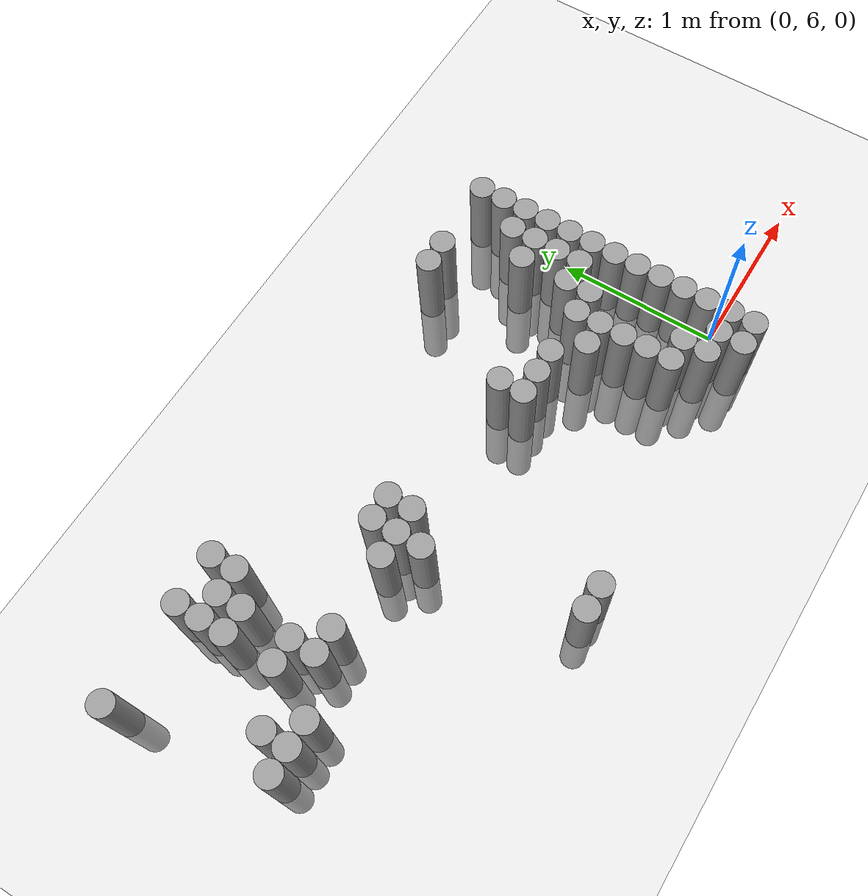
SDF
<sdf version="1.6">
 <world name="default">
  <model name="ground_plane">
   <static>1</static>
   <static>1</static>
   <link name="link">
    <collision name="collision">
     <geometry><plane><normal>0 0 1</normal><size>100 100</size></plane></geometry>
     <surface><friction><ode><mu>100000</mu><mu2>50000</mu2></ode></friction></surface>
    </collision>
    <visual name="visual">
     <cast_shadows>0</cast_shadows>
     <geometry><plane><normal>0 0 1</normal><size>100 100</size></plane></geometry>
     <material>
      <script><uri>file://media/materials/scripts/gazebo.material</uri><name>Gazebo/Grey</name></script>
     </material>
    </visual>
   </link>
  </model>
  <model name="unit_cylinder_164">
   <static>1</static>
   <pose>-3.675000 7.575000 0.000000 0.000000 0.000000 0.000000</pose>
   <link name="link">
    <inertial>
     <mass>1</mass>
     <inertia><ixx>0.145833</ixx><ixy>0</ixy><ixz>0</ixz><iyy>0.145833</iyy><iyz>0</iyz><izz>0.125</izz></inertia>
    </inertial>
    <collision name="collision">
     <geometry><cylinder><radius>0.075000</radius><length>1</length></cylinder></geometry>
    </collision>
    <visual name="visual">
     <geometry><cylinder><radius>0.075000</radius><length>1</length></cylinder></geometry>
     <material>
      <script><name>Gazebo/Grey</name><uri>file://media/materials/scripts/gazebo.material</uri></script>
     </material>
    </visual>
   </link>
  </model>
  <model name="unit_cylinder_167">
   <static>1</static>
   <pose>-3.525000 6.675000 0.000000 0.000000 0.000000 0.000000</pose>
   <link name="link">
    <inertial>
     <mass>1</mass>
     <inertia><ixx>0.145833</ixx><ixy>0</ixy><ixz>0</ixz><iyy>0.145833</iyy><iyz>0</iyz><izz>0.125</izz></inertia>
    </inertial>
    <collision name="collision">
     <geometry><cylinder><radius>0.075000</radius><length>1</length></cylinder></geometry>
    </collision>
    <visual name="visual">
     <geometry><cylinder><radius>0.075000</radius><length>1</length></cylinder></geometry>
     <material>
      <script><name>Gazebo/Grey</name><uri>file://media/materials/scripts/gazebo.material</uri></script>
     </material>
    </visual>
   </link>
  </model>
  <model name="unit_cylinder_169">
   <static>1</static>
   <pose>-3.375000 6.675000 0.000000 0.000000 0.000000 0.000000</pose>
   <link name="link">
    <inertial>
     <mass>1</mass>
     <inertia><ixx>0.145833</ixx><ixy>0</ixy><ixz>0</ixz><iyy>0.145833</iyy><iyz>0</iyz><izz>0.125</izz></inertia>
    </inertial>
    <collision name="collision">
     <geometry><cylinder><radius>0.075000</radius><length>1</length></cylinder></geometry>
    </collision>
    <visual name="visual">
     <geometry><cylinder><radius>0.075000</radius><length>1</length></cylinder></geometry>
     <material>
      <script><name>Gazebo/Grey</name><uri>file://media/materials/scripts/gazebo.material</uri></script>
     </material>
    </visual>
   </link>
  </model>
  <model name="unit_cylinder_170">
   <static>1</static>
   <pose>-3.375000 6.825000 0.000000 0.000000 0.000000 0.000000</pose>
   <link name="link">
    <inertial>
     <mass>1</mass>
     <inertia><ixx>0.145833</ixx><ixy>0</ixy><ixz>0</ixz><iyy>0.145833</iyy><iyz>0</iyz><izz>0.125</izz></inertia>
    </inertial>
    <collision name="collision">
     <geometry><cylinder><radius>0.075000</radius><length>1</length></cylinder></geometry>
    </collision>
    <visual name="visual">
     <geometry><cylinder><radius>0.075000</radius><length>1</length></cylinder></geometry>
     <material>
      <script><name>Gazebo/Grey</name><uri>file://media/materials/scripts/gazebo.material</uri></script>
     </material>
    </visual>
   </link>
  </model>
  <model name="unit_cylinder_171">
   <static>1</static>
   <pose>-3.225000 6.675000 0.000000 0.000000 0.000000 0.000000</pose>
   <link name="link">
    <inertial>
     <mass>1</mass>
     <inertia><ixx>0.145833</ixx><ixy>0</ixy><ixz>0</ixz><iyy>0.145833</iyy><iyz>0</iyz><izz>0.125</izz></inertia>
    </inertial>
    <collision name="collision">
     <geometry><cylinder><radius>0.075000</radius><length>1</length></cylinder></geometry>
    </collision>
    <visual name="visual">
     <geometry><cylinder><radius>0.075000</radius><length>1</length></cylinder></geometry>
     <material>
      <script><name>Gazebo/Grey</name><uri>file://media/materials/scripts/gazebo.material</uri></script>
     </material>
    </visual>
   </link>
  </model>
  <model name="unit_cylinder_176">
   <static>1</static>
   <pose>-3.075000 6.975000 0.000000 0.000000 0.000000 0.000000</pose>
   <link name="link">
    <inertial>
     <mass>1</mass>
     <inertia><ixx>0.145833</ixx><ixy>0</ixy><ixz>0</ixz><iyy>0.145833</iyy><iyz>0</iyz><izz>0.125</izz></inertia>
    </inertial>
    <collision name="collision">
     <geometry><cylinder><radius>0.075000</radius><length>1</length></cylinder></geometry>
    </collision>
    <visual name="visual">
     <geometry><cylinder><radius>0.075000</radius><length>1</length></cylinder></geometry>
     <material>
      <script><name>Gazebo/Grey</name><uri>file://media/materials/scripts/gazebo.material</uri></script>
     </material>
    </visual>
   </link>
  </model>
  <model name="unit_cylinder_177">
   <static>1</static>
   <pose>-3.075000 7.275000 0.000000 0.000000 0.000000 0.000000</pose>
   <link name="link">
    <inertial>
     <mass>1</mass>
     <inertia><ixx>0.145833</ixx><ixy>0</ixy><ixz>0</ixz><iyy>0.145833</iyy><iyz>0</iyz><izz>0.125</izz></inertia>
    </inertial>
    <collision name="collision">
     <geometry><cylinder><radius>0.075000</radius><length>1</length></cylinder></geometry>
    </collision>
    <visual name="visual">
     <geometry><cylinder><radius>0.075000</radius><length>1</length></cylinder></geometry>
     <material>
      <script><name>Gazebo/Grey</name><uri>file://media/materials/scripts/gazebo.material</uri></script>
     </material>
    </visual>
   </link>
  </model>
  <model name="unit_cylinder_178">
   <static>1</static>
   <pose>-3.075000 7.425000 0.000000 0.000000 0.000000 0.000000</pose>
   <link name="link">
    <inertial>
     <mass>1</mass>
     <inertia><ixx>0.145833</ixx><ixy>0</ixy><ixz>0</ixz><iyy>0.145833</iyy><iyz>0</iyz><izz>0.125</izz></inertia>
    </inertial>
    <collision name="collision">
     <geometry><cylinder><radius>0.075000</radius><length>1</length></cylinder></geometry>
    </collision>
    <visual name="visual">
     <geometry><cylinder><radius>0.075000</radius><length>1</length></cylinder></geometry>
     <material>
      <script><name>Gazebo/Grey</name><uri>file://media/materials/scripts/gazebo.material</uri></script>
     </material>
    </visual>
   </link>
  </model>
  <model name="unit_cylinder_179">
   <static>1</static>
   <pose>-3.075000 7.575000 0.000000 0.000000 0.000000 0.000000</pose>
   <link name="link">
    <inertial>
     <mass>1</mass>
     <inertia><ixx>0.145833</ixx><ixy>0</ixy><ixz>0</ixz><iyy>0.145833</iyy><iyz>0</iyz><izz>0.125</izz></inertia>
    </inertial>
    <collision name="collision">
     <geometry><cylinder><radius>0.075000</radius><length>1</length></cylinder></geometry>
    </collision>
    <visual name="visual">
     <geometry><cylinder><radius>0.075000</radius><length>1</length></cylinder></geometry>
     <material>
      <script><name>Gazebo/Grey</name><uri>file://media/materials/scripts/gazebo.material</uri></script>
     </material>
    </visual>
   </link>
  </model>
  <model name="unit_cylinder_189">
   <static>1</static>
   <pose>-2.925000 6.825000 0.000000 0.000000 0.000000 0.000000</pose>
   <link name="link">
    <inertial>
     <mass>1</mass>
     <inertia><ixx>0.145833</ixx><ixy>0</ixy><ixz>0</ixz><iyy>0.145833</iyy><iyz>0</iyz><izz>0.125</izz></inertia>
    </inertial>
    <collision name="collision">
     <geometry><cylinder><radius>0.075000</radius><length>1</length></cylinder></geometry>
    </collision>
    <visual name="visual">
     <geometry><cylinder><radius>0.075000</radius><length>1</length></cylinder></geometry>
     <material>
      <script><name>Gazebo/Grey</name><uri>file://media/materials/scripts/gazebo.material</uri></script>
     </material>
    </visual>
   </link>
  </model>
  <model name="unit_cylinder_190">
   <static>1</static>
   <pose>-2.925000 6.975000 0.000000 0.000000 0.000000 0.000000</pose>
   <link name="link">
    <inertial>
     <mass>1</mass>
     <inertia><ixx>0.145833</ixx><ixy>0</ixy><ixz>0</ixz><iyy>0.145833</iyy><iyz>0</iyz><izz>0.125</izz></inertia>
    </inertial>
    <collision name="collision">
     <geometry><cylinder><radius>0.075000</radius><length>1</length></cylinder></geometry>
    </collision>
    <visual name="visual">
     <geometry><cylinder><radius>0.075000</radius><length>1</length></cylinder></geometry>
     <material>
      <script><name>Gazebo/Grey</name><uri>file://media/materials/scripts/gazebo.material</uri></script>
     </material>
    </visual>
   </link>
  </model>
  <model name="unit_cylinder_191">
   <static>1</static>
   <pose>-2.925000 7.275000 0.000000 0.000000 0.000000 0.000000</pose>
   <link name="link">
    <inertial>
     <mass>1</mass>
     <inertia><ixx>0.145833</ixx><ixy>0</ixy><ixz>0</ixz><iyy>0.145833</iyy><iyz>0</iyz><izz>0.125</izz></inertia>
    </inertial>
    <collision name="collision">
     <geometry><cylinder><radius>0.075000</radius><length>1</length></cylinder></geometry>
    </collision>
    <visual name="visual">
     <geometry><cylinder><radius>0.075000</radius><length>1</length></cylinder></geometry>
     <material>
      <script><name>Gazebo/Grey</name><uri>file://media/materials/scripts/gazebo.material</uri></script>
     </material>
    </visual>
   </link>
  </model>
  <model name="unit_cylinder_192">
   <static>1</static>
   <pose>-2.925000 7.425000 0.000000 0.000000 0.000000 0.000000</pose>
   <link name="link">
    <inertial>
     <mass>1</mass>
     <inertia><ixx>0.145833</ixx><ixy>0</ixy><ixz>0</ixz><iyy>0.145833</iyy><iyz>0</iyz><izz>0.125</izz></inertia>
    </inertial>
    <collision name="collision">
     <geometry><cylinder><radius>0.075000</radius><length>1</length></cylinder></geometry>
    </collision>
    <visual name="visual">
     <geometry><cylinder><radius>0.075000</radius><length>1</length></cylinder></geometry>
     <material>
      <script><name>Gazebo/Grey</name><uri>file://media/materials/scripts/gazebo.material</uri></script>
     </material>
    </visual>
   </link>
  </model>
  <model name="unit_cylinder_200">
   <static>1</static>
   <pose>-2.775000 6.825000 0.000000 0.000000 0.000000 0.000000</pose>
   <link name="link">
    <inertial>
     <mass>1</mass>
     <inertia><ixx>0.145833</ixx><ixy>0</ixy><ixz>0</ixz><iyy>0.145833</iyy><iyz>0</iyz><izz>0.125</izz></inertia>
    </inertial>
    <collision name="collision">
     <geometry><cylinder><radius>0.075000</radius><length>1</length></cylinder></geometry>
    </collision>
    <visual name="visual">
     <geometry><cylinder><radius>0.075000</radius><length>1</length></cylinder></geometry>
     <material>
      <script><name>Gazebo/Grey</name><uri>file://media/materials/scripts/gazebo.material</uri></script>
     </material>
    </visual>
   </link>
  </model>
  <model name="unit_cylinder_201">
   <static>1</static>
   <pose>-2.775000 7.425000 0.000000 0.000000 0.000000 0.000000</pose>
   <link name="link">
    <inertial>
     <mass>1</mass>
     <inertia><ixx>0.145833</ixx><ixy>0</ixy><ixz>0</ixz><iyy>0.145833</iyy><iyz>0</iyz><izz>0.125</izz></inertia>
    </inertial>
    <collision name="collision">
     <geometry><cylinder><radius>0.075000</radius><length>1</length></cylinder></geometry>
    </collision>
    <visual name="visual">
     <geometry><cylinder><radius>0.075000</radius><length>1</length></cylinder></geometry>
     <material>
      <script><name>Gazebo/Grey</name><uri>file://media/materials/scripts/gazebo.material</uri></script>
     </material>
    </visual>
   </link>
  </model>
  <model name="unit_cylinder_202">
   <static>1</static>
   <pose>-2.775000 7.575000 0.000000 0.000000 0.000000 0.000000</pose>
   <link name="link">
    <inertial>
     <mass>1</mass>
     <inertia><ixx>0.145833</ixx><ixy>0</ixy><ixz>0</ixz><iyy>0.145833</iyy><iyz>0</iyz><izz>0.125</izz></inertia>
    </inertial>
    <collision name="collision">
     <geometry><cylinder><radius>0.075000</radius><length>1</length></cylinder></geometry>
    </collision>
    <visual name="visual">
     <geometry><cylinder><radius>0.075000</radius><length>1</length></cylinder></geometry>
     <material>
      <script><name>Gazebo/Grey</name><uri>file://media/materials/scripts/gazebo.material</uri></script>
     </material>
    </visual>
   </link>
  </model>
  <model name="unit_cylinder_218">
   <static>1</static>
   <pose>-2.325000 6.825000 0.000000 0.000000 0.000000 0.000000</pose>
   <link name="link">
    <inertial>
     <mass>1</mass>
     <inertia><ixx>0.145833</ixx><ixy>0</ixy><ixz>0</ixz><iyy>0.145833</iyy><iyz>0</iyz><izz>0.125</izz></inertia>
    </inertial>
    <collision name="collision">
     <geometry><cylinder><radius>0.075000</radius><length>1</length></cylinder></geometry>
    </collision>
    <visual name="visual">
     <geometry><cylinder><radius>0.075000</radius><length>1</length></cylinder></geometry>
     <material>
      <script><name>Gazebo/Grey</name><uri>file://media/materials/scripts/gazebo.material</uri></script>
     </material>
    </visual>
   </link>
  </model>
  <model name="unit_cylinder_219">
   <static>1</static>
   <pose>-2.175000 6.675000 0.000000 0.000000 0.000000 0.000000</pose>
   <link name="link">
    <inertial>
     <mass>1</mass>
     <inertia><ixx>0.145833</ixx><ixy>0</ixy><ixz>0</ixz><iyy>0.145833</iyy><iyz>0</iyz><izz>0.125</izz></inertia>
    </inertial>
    <collision name="collision">
     <geometry><cylinder><radius>0.075000</radius><length>1</length></cylinder></geometry>
    </collision>
    <visual name="visual">
     <geometry><cylinder><radius>0.075000</radius><length>1</length></cylinder></geometry>
     <material>
      <script><name>Gazebo/Grey</name><uri>file://media/materials/scripts/gazebo.material</uri></script>
     </material>
    </visual>
   </link>
  </model>
  <model name="unit_cylinder_220">
   <static>1</static>
   <pose>-2.175000 6.825000 0.000000 0.000000 0.000000 0.000000</pose>
   <link name="link">
    <inertial>
     <mass>1</mass>
     <inertia><ixx>0.145833</ixx><ixy>0</ixy><ixz>0</ixz><iyy>0.145833</iyy><iyz>0</iyz><izz>0.125</izz></inertia>
    </inertial>
    <collision name="collision">
     <geometry><cylinder><radius>0.075000</radius><length>1</length></cylinder></geometry>
    </collision>
    <visual name="visual">
     <geometry><cylinder><radius>0.075000</radius><length>1</length></cylinder></geometry>
     <material>
      <script><name>Gazebo/Grey</name><uri>file://media/materials/scripts/gazebo.material</uri></script>
     </material>
    </visual>
   </link>
  </model>
  <model name="unit_cylinder_221">
   <static>1</static>
   <pose>-2.175000 6.975000 0.000000 0.000000 0.000000 0.000000</pose>
   <link name="link">
    <inertial>
     <mass>1</mass>
     <inertia><ixx>0.145833</ixx><ixy>0</ixy><ixz>0</ixz><iyy>0.145833</iyy><iyz>0</iyz><izz>0.125</izz></inertia>
    </inertial>
    <collision name="collision">
     <geometry><cylinder><radius>0.075000</radius><length>1</length></cylinder></geometry>
    </collision>
    <visual name="visual">
     <geometry><cylinder><radius>0.075000</radius><length>1</length></cylinder></geometry>
     <material>
      <script><name>Gazebo/Grey</name><uri>file://media/materials/scripts/gazebo.material</uri></script>
     </material>
    </visual>
   </link>
  </model>
  <model name="unit_cylinder_223">
   <static>1</static>
   <pose>-2.025000 5.775000 0.000000 0.000000 0.000000 0.000000</pose>
   <link name="link">
    <inertial>
     <mass>1</mass>
     <inertia><ixx>0.145833</ixx><ixy>0</ixy><ixz>0</ixz><iyy>0.145833</iyy><iyz>0</iyz><izz>0.125</izz></inertia>
    </inertial>
    <collision name="collision">
     <geometry><cylinder><radius>0.075000</radius><length>1</length></cylinder></geometry>
    </collision>
    <visual name="visual">
     <geometry><cylinder><radius>0.075000</radius><length>1</length></cylinder></geometry>
     <material>
      <script><name>Gazebo/Grey</name><uri>file://media/materials/scripts/gazebo.material</uri></script>
     </material>
    </visual>
   </link>
  </model>
  <model name="unit_cylinder_224">
   <static>1</static>
   <pose>-2.025000 6.825000 0.000000 0.000000 0.000000 0.000000</pose>
   <link name="link">
    <inertial>
     <mass>1</mass>
     <inertia><ixx>0.145833</ixx><ixy>0</ixy><ixz>0</ixz><iyy>0.145833</iyy><iyz>0</iyz><izz>0.125</izz></inertia>
    </inertial>
    <collision name="collision">
     <geometry><cylinder><radius>0.075000</radius><length>1</length></cylinder></geometry>
    </collision>
    <visual name="visual">
     <geometry><cylinder><radius>0.075000</radius><length>1</length></cylinder></geometry>
     <material>
      <script><name>Gazebo/Grey</name><uri>file://media/materials/scripts/gazebo.material</uri></script>
     </material>
    </visual>
   </link>
  </model>
  <model name="unit_cylinder_225">
   <static>1</static>
   <pose>-2.025000 6.975000 0.000000 0.000000 0.000000 0.000000</pose>
   <link name="link">
    <inertial>
     <mass>1</mass>
     <inertia><ixx>0.145833</ixx><ixy>0</ixy><ixz>0</ixz><iyy>0.145833</iyy><iyz>0</iyz><izz>0.125</izz></inertia>
    </inertial>
    <collision name="collision">
     <geometry><cylinder><radius>0.075000</radius><length>1</length></cylinder></geometry>
    </collision>
    <visual name="visual">
     <geometry><cylinder><radius>0.075000</radius><length>1</length></cylinder></geometry>
     <material>
      <script><name>Gazebo/Grey</name><uri>file://media/materials/scripts/gazebo.material</uri></script>
     </material>
    </visual>
   </link>
  </model>
  <model name="unit_cylinder_228">
   <static>1</static>
   <pose>-1.875000 5.775000 0.000000 0.000000 0.000000 0.000000</pose>
   <link name="link">
    <inertial>
     <mass>1</mass>
     <inertia><ixx>0.145833</ixx><ixy>0</ixy><ixz>0</ixz><iyy>0.145833</iyy><iyz>0</iyz><izz>0.125</izz></inertia>
    </inertial>
    <collision name="collision">
     <geometry><cylinder><radius>0.075000</radius><length>1</length></cylinder></geometry>
    </collision>
    <visual name="visual">
     <geometry><cylinder><radius>0.075000</radius><length>1</length></cylinder></geometry>
     <material>
      <script><name>Gazebo/Grey</name><uri>file://media/materials/scripts/gazebo.material</uri></script>
     </material>
    </visual>
   </link>
  </model>
  <model name="unit_cylinder_238">
   <static>1</static>
   <pose>-1.125000 6.675000 0.000000 0.000000 0.000000 0.000000</pose>
   <link name="link">
    <inertial>
     <mass>1</mass>
     <inertia><ixx>0.145833</ixx><ixy>0</ixy><ixz>0</ixz><iyy>0.145833</iyy><iyz>0</iyz><izz>0.125</izz></inertia>
    </inertial>
    <collision name="collision">
     <geometry><cylinder><radius>0.075000</radius><length>1</length></cylinder></geometry>
    </collision>
    <visual name="visual">
     <geometry><cylinder><radius>0.075000</radius><length>1</length></cylinder></geometry>
     <material>
      <script><name>Gazebo/Grey</name><uri>file://media/materials/scripts/gazebo.material</uri></script>
     </material>
    </visual>
   </link>
  </model>
  <model name="unit_cylinder_239">
   <static>1</static>
   <pose>-1.125000 6.825000 0.000000 0.000000 0.000000 0.000000</pose>
   <link name="link">
    <inertial>
     <mass>1</mass>
     <inertia><ixx>0.145833</ixx><ixy>0</ixy><ixz>0</ixz><iyy>0.145833</iyy><iyz>0</iyz><izz>0.125</izz></inertia>
    </inertial>
    <collision name="collision">
     <geometry><cylinder><radius>0.075000</radius><length>1</length></cylinder></geometry>
    </collision>
    <visual name="visual">
     <geometry><cylinder><radius>0.075000</radius><length>1</length></cylinder></geometry>
     <material>
      <script><name>Gazebo/Grey</name><uri>file://media/materials/scripts/gazebo.material</uri></script>
     </material>
    </visual>
   </link>
  </model>
  <model name="unit_cylinder_240">
   <static>1</static>
   <pose>-0.975000 6.675000 0.000000 0.000000 0.000000 0.000000</pose>
   <link name="link">
    <inertial>
     <mass>1</mass>
     <inertia><ixx>0.145833</ixx><ixy>0</ixy><ixz>0</ixz><iyy>0.145833</iyy><iyz>0</iyz><izz>0.125</izz></inertia>
    </inertial>
    <collision name="collision">
     <geometry><cylinder><radius>0.075000</radius><length>1</length></cylinder></geometry>
    </collision>
    <visual name="visual">
     <geometry><cylinder><radius>0.075000</radius><length>1</length></cylinder></geometry>
     <material>
      <script><name>Gazebo/Grey</name><uri>file://media/materials/scripts/gazebo.material</uri></script>
     </material>
    </visual>
   </link>
  </model>
  <model name="unit_cylinder_241">
   <static>1</static>
   <pose>-0.825000 6.675000 0.000000 0.000000 0.000000 0.000000</pose>
   <link name="link">
    <inertial>
     <mass>1</mass>
     <inertia><ixx>0.145833</ixx><ixy>0</ixy><ixz>0</ixz><iyy>0.145833</iyy><iyz>0</iyz><izz>0.125</izz></inertia>
    </inertial>
    <collision name="collision">
     <geometry><cylinder><radius>0.075000</radius><length>1</length></cylinder></geometry>
    </collision>
    <visual name="visual">
     <geometry><cylinder><radius>0.075000</radius><length>1</length></cylinder></geometry>
     <material>
      <script><name>Gazebo/Grey</name><uri>file://media/materials/scripts/gazebo.material</uri></script>
     </material>
    </visual>
   </link>
  </model>
  <model name="unit_cylinder_242">
   <static>1</static>
   <pose>-0.675000 6.525000 0.000000 0.000000 0.000000 0.000000</pose>
   <link name="link">
    <inertial>
     <mass>1</mass>
     <inertia><ixx>0.145833</ixx><ixy>0</ixy><ixz>0</ixz><iyy>0.145833</iyy><iyz>0</iyz><izz>0.125</izz></inertia>
    </inertial>
    <collision name="collision">
     <geometry><cylinder><radius>0.075000</radius><length>1</length></cylinder></geometry>
    </collision>
    <visual name="visual">
     <geometry><cylinder><radius>0.075000</radius><length>1</length></cylinder></geometry>
     <material>
      <script><name>Gazebo/Grey</name><uri>file://media/materials/scripts/gazebo.material</uri></script>
     </material>
    </visual>
   </link>
  </model>
  <model name="unit_cylinder_243">
   <static>1</static>
   <pose>-0.675000 7.575000 0.000000 0.000000 0.000000 0.000000</pose>
   <link name="link">
    <inertial>
     <mass>1</mass>
     <inertia><ixx>0.145833</ixx><ixy>0</ixy><ixz>0</ixz><iyy>0.145833</iyy><iyz>0</iyz><izz>0.125</izz></inertia>
    </inertial>
    <collision name="collision">
     <geometry><cylinder><radius>0.075000</radius><length>1</length></cylinder></geometry>
    </collision>
    <visual name="visual">
     <geometry><cylinder><radius>0.075000</radius><length>1</length></cylinder></geometry>
     <material>
      <script><name>Gazebo/Grey</name><uri>file://media/materials/scripts/gazebo.material</uri></script>
     </material>
    </visual>
   </link>
  </model>
  <model name="unit_cylinder_247">
   <static>1</static>
   <pose>-0.525000 6.075000 0.000000 0.000000 0.000000 0.000000</pose>
   <link name="link">
    <inertial>
     <mass>1</mass>
     <inertia><ixx>0.145833</ixx><ixy>0</ixy><ixz>0</ixz><iyy>0.145833</iyy><iyz>0</iyz><izz>0.125</izz></inertia>
    </inertial>
    <collision name="collision">
     <geometry><cylinder><radius>0.075000</radius><length>1</length></cylinder></geometry>
    </collision>
    <visual name="visual">
     <geometry><cylinder><radius>0.075000</radius><length>1</length></cylinder></geometry>
     <material>
      <script><name>Gazebo/Grey</name><uri>file://media/materials/scripts/gazebo.material</uri></script>
     </material>
    </visual>
   </link>
  </model>
  <model name="unit_cylinder_248">
   <static>1</static>
   <pose>-0.525000 6.225000 0.000000 0.000000 0.000000 0.000000</pose>
   <link name="link">
    <inertial>
     <mass>1</mass>
     <inertia><ixx>0.145833</ixx><ixy>0</ixy><ixz>0</ixz><iyy>0.145833</iyy><iyz>0</iyz><izz>0.125</izz></inertia>
    </inertial>
    <collision name="collision">
     <geometry><cylinder><radius>0.075000</radius><length>1</length></cylinder></geometry>
    </collision>
    <visual name="visual">
     <geometry><cylinder><radius>0.075000</radius><length>1</length></cylinder></geometry>
     <material>
      <script><name>Gazebo/Grey</name><uri>file://media/materials/scripts/gazebo.material</uri></script>
     </material>
    </visual>
   </link>
  </model>
  <model name="unit_cylinder_249">
   <static>1</static>
   <pose>-0.525000 6.375000 0.000000 0.000000 0.000000 0.000000</pose>
   <link name="link">
    <inertial>
     <mass>1</mass>
     <inertia><ixx>0.145833</ixx><ixy>0</ixy><ixz>0</ixz><iyy>0.145833</iyy><iyz>0</iyz><izz>0.125</izz></inertia>
    </inertial>
    <collision name="collision">
     <geometry><cylinder><radius>0.075000</radius><length>1</length></cylinder></geometry>
    </collision>
    <visual name="visual">
     <geometry><cylinder><radius>0.075000</radius><length>1</length></cylinder></geometry>
     <material>
      <script><name>Gazebo/Grey</name><uri>file://media/materials/scripts/gazebo.material</uri></script>
     </material>
    </visual>
   </link>
  </model>
  <model name="unit_cylinder_250">
   <static>1</static>
   <pose>-0.525000 6.525000 0.000000 0.000000 0.000000 0.000000</pose>
   <link name="link">
    <inertial>
     <mass>1</mass>
     <inertia><ixx>0.145833</ixx><ixy>0</ixy><ixz>0</ixz><iyy>0.145833</iyy><iyz>0</iyz><izz>0.125</izz></inertia>
    </inertial>
    <collision name="collision">
     <geometry><cylinder><radius>0.075000</radius><length>1</length></cylinder></geometry>
    </collision>
    <visual name="visual">
     <geometry><cylinder><radius>0.075000</radius><length>1</length></cylinder></geometry>
     <material>
      <script><name>Gazebo/Grey</name><uri>file://media/materials/scripts/gazebo.material</uri></script>
     </material>
    </visual>
   </link>
  </model>
  <model name="unit_cylinder_251">
   <static>1</static>
   <pose>-0.525000 6.675000 0.000000 0.000000 0.000000 0.000000</pose>
   <link name="link">
    <inertial>
     <mass>1</mass>
     <inertia><ixx>0.145833</ixx><ixy>0</ixy><ixz>0</ixz><iyy>0.145833</iyy><iyz>0</iyz><izz>0.125</izz></inertia>
    </inertial>
    <collision name="collision">
     <geometry><cylinder><radius>0.075000</radius><length>1</length></cylinder></geometry>
    </collision>
    <visual name="visual">
     <geometry><cylinder><radius>0.075000</radius><length>1</length></cylinder></geometry>
     <material>
      <script><name>Gazebo/Grey</name><uri>file://media/materials/scripts/gazebo.material</uri></script>
     </material>
    </visual>
   </link>
  </model>
  <model name="unit_cylinder_252">
   <static>1</static>
   <pose>-0.525000 7.575000 0.000000 0.000000 0.000000 0.000000</pose>
   <link name="link">
    <inertial>
     <mass>1</mass>
     <inertia><ixx>0.145833</ixx><ixy>0</ixy><ixz>0</ixz><iyy>0.145833</iyy><iyz>0</iyz><izz>0.125</izz></inertia>
    </inertial>
    <collision name="collision">
     <geometry><cylinder><radius>0.075000</radius><length>1</length></cylinder></geometry>
    </collision>
    <visual name="visual">
     <geometry><cylinder><radius>0.075000</radius><length>1</length></cylinder></geometry>
     <material>
      <script><name>Gazebo/Grey</name><uri>file://media/materials/scripts/gazebo.material</uri></script>
     </material>
    </visual>
   </link>
  </model>
  <model name="unit_cylinder_256">
   <static>1</static>
   <pose>-0.375000 5.925000 0.000000 0.000000 0.000000 0.000000</pose>
   <link name="link">
    <inertial>
     <mass>1</mass>
     <inertia><ixx>0.145833</ixx><ixy>0</ixy><ixz>0</ixz><iyy>0.145833</iyy><iyz>0</iyz><izz>0.125</izz></inertia>
    </inertial>
    <collision name="collision">
     <geometry><cylinder><radius>0.075000</radius><length>1</length></cylinder></geometry>
    </collision>
    <visual name="visual">
     <geometry><cylinder><radius>0.075000</radius><length>1</length></cylinder></geometry>
     <material>
      <script><name>Gazebo/Grey</name><uri>file://media/materials/scripts/gazebo.material</uri></script>
     </material>
    </visual>
   </link>
  </model>
  <model name="unit_cylinder_257">
   <static>1</static>
   <pose>-0.375000 6.075000 0.000000 0.000000 0.000000 0.000000</pose>
   <link name="link">
    <inertial>
     <mass>1</mass>
     <inertia><ixx>0.145833</ixx><ixy>0</ixy><ixz>0</ixz><iyy>0.145833</iyy><iyz>0</iyz><izz>0.125</izz></inertia>
    </inertial>
    <collision name="collision">
     <geometry><cylinder><radius>0.075000</radius><length>1</length></cylinder></geometry>
    </collision>
    <visual name="visual">
     <geometry><cylinder><radius>0.075000</radius><length>1</length></cylinder></geometry>
     <material>
      <script><name>Gazebo/Grey</name><uri>file://media/materials/scripts/gazebo.material</uri></script>
     </material>
    </visual>
   </link>
  </model>
  <model name="unit_cylinder_258">
   <static>1</static>
   <pose>-0.375000 6.675000 0.000000 0.000000 0.000000 0.000000</pose>
   <link name="link">
    <inertial>
     <mass>1</mass>
     <inertia><ixx>0.145833</ixx><ixy>0</ixy><ixz>0</ixz><iyy>0.145833</iyy><iyz>0</iyz><izz>0.125</izz></inertia>
    </inertial>
    <collision name="collision">
     <geometry><cylinder><radius>0.075000</radius><length>1</length></cylinder></geometry>
    </collision>
    <visual name="visual">
     <geometry><cylinder><radius>0.075000</radius><length>1</length></cylinder></geometry>
     <material>
      <script><name>Gazebo/Grey</name><uri>file://media/materials/scripts/gazebo.material</uri></script>
     </material>
    </visual>
   </link>
  </model>
  <model name="unit_cylinder_259">
   <static>1</static>
   <pose>-0.375000 6.825000 0.000000 0.000000 0.000000 0.000000</pose>
   <link name="link">
    <inertial>
     <mass>1</mass>
     <inertia><ixx>0.145833</ixx><ixy>0</ixy><ixz>0</ixz><iyy>0.145833</iyy><iyz>0</iyz><izz>0.125</izz></inertia>
    </inertial>
    <collision name="collision">
     <geometry><cylinder><radius>0.075000</radius><length>1</length></cylinder></geometry>
    </collision>
    <visual name="visual">
     <geometry><cylinder><radius>0.075000</radius><length>1</length></cylinder></geometry>
     <material>
      <script><name>Gazebo/Grey</name><uri>file://media/materials/scripts/gazebo.material</uri></script>
     </material>
    </visual>
   </link>
  </model>
  <model name="unit_cylinder_260">
   <static>1</static>
   <pose>-0.375000 7.125000 0.000000 0.000000 0.000000 0.000000</pose>
   <link name="link">
    <inertial>
     <mass>1</mass>
     <inertia><ixx>0.145833</ixx><ixy>0</ixy><ixz>0</ixz><iyy>0.145833</iyy><iyz>0</iyz><izz>0.125</izz></inertia>
    </inertial>
    <collision name="collision">
     <geometry><cylinder><radius>0.075000</radius><length>1</length></cylinder></geometry>
    </collision>
    <visual name="visual">
     <geometry><cylinder><radius>0.075000</radius><length>1</length></cylinder></geometry>
     <material>
      <script><name>Gazebo/Grey</name><uri>file://media/materials/scripts/gazebo.material</uri></script>
     </material>
    </visual>
   </link>
  </model>
  <model name="unit_cylinder_262">
   <static>1</static>
   <pose>-0.225000 5.775000 0.000000 0.000000 0.000000 0.000000</pose>
   <link name="link">
    <inertial>
     <mass>1</mass>
     <inertia><ixx>0.145833</ixx><ixy>0</ixy><ixz>0</ixz><iyy>0.145833</iyy><iyz>0</iyz><izz>0.125</izz></inertia>
    </inertial>
    <collision name="collision">
     <geometry><cylinder><radius>0.075000</radius><length>1</length></cylinder></geometry>
    </collision>
    <visual name="visual">
     <geometry><cylinder><radius>0.075000</radius><length>1</length></cylinder></geometry>
     <material>
      <script><name>Gazebo/Grey</name><uri>file://media/materials/scripts/gazebo.material</uri></script>
     </material>
    </visual>
   </link>
  </model>
  <model name="unit_cylinder_263">
   <static>1</static>
   <pose>-0.225000 5.925000 0.000000 0.000000 0.000000 0.000000</pose>
   <link name="link">
    <inertial>
     <mass>1</mass>
     <inertia><ixx>0.145833</ixx><ixy>0</ixy><ixz>0</ixz><iyy>0.145833</iyy><iyz>0</iyz><izz>0.125</izz></inertia>
    </inertial>
    <collision name="collision">
     <geometry><cylinder><radius>0.075000</radius><length>1</length></cylinder></geometry>
    </collision>
    <visual name="visual">
     <geometry><cylinder><radius>0.075000</radius><length>1</length></cylinder></geometry>
     <material>
      <script><name>Gazebo/Grey</name><uri>file://media/materials/scripts/gazebo.material</uri></script>
     </material>
    </visual>
   </link>
  </model>
  <model name="unit_cylinder_264">
   <static>1</static>
   <pose>-0.225000 6.825000 0.000000 0.000000 0.000000 0.000000</pose>
   <link name="link">
    <inertial>
     <mass>1</mass>
     <inertia><ixx>0.145833</ixx><ixy>0</ixy><ixz>0</ixz><iyy>0.145833</iyy><iyz>0</iyz><izz>0.125</izz></inertia>
    </inertial>
    <collision name="collision">
     <geometry><cylinder><radius>0.075000</radius><length>1</length></cylinder></geometry>
    </collision>
    <visual name="visual">
     <geometry><cylinder><radius>0.075000</radius><length>1</length></cylinder></geometry>
     <material>
      <script><name>Gazebo/Grey</name><uri>file://media/materials/scripts/gazebo.material</uri></script>
     </material>
    </visual>
   </link>
  </model>
  <model name="unit_cylinder_265">
   <static>1</static>
   <pose>-0.225000 6.975000 0.000000 0.000000 0.000000 0.000000</pose>
   <link name="link">
    <inertial>
     <mass>1</mass>
     <inertia><ixx>0.145833</ixx><ixy>0</ixy><ixz>0</ixz><iyy>0.145833</iyy><iyz>0</iyz><izz>0.125</izz></inertia>
    </inertial>
    <collision name="collision">
     <geometry><cylinder><radius>0.075000</radius><length>1</length></cylinder></geometry>
    </collision>
    <visual name="visual">
     <geometry><cylinder><radius>0.075000</radius><length>1</length></cylinder></geometry>
     <material>
      <script><name>Gazebo/Grey</name><uri>file://media/materials/scripts/gazebo.material</uri></script>
     </material>
    </visual>
   </link>
  </model>
  <model name="unit_cylinder_266">
   <static>1</static>
   <pose>-0.225000 7.125000 0.000000 0.000000 0.000000 0.000000</pose>
   <link name="link">
    <inertial>
     <mass>1</mass>
     <inertia><ixx>0.145833</ixx><ixy>0</ixy><ixz>0</ixz><iyy>0.145833</iyy><iyz>0</iyz><izz>0.125</izz></inertia>
    </inertial>
    <collision name="collision">
     <geometry><cylinder><radius>0.075000</radius><length>1</length></cylinder></geometry>
    </collision>
    <visual name="visual">
     <geometry><cylinder><radius>0.075000</radius><length>1</length></cylinder></geometry>
     <material>
      <script><name>Gazebo/Grey</name><uri>file://media/materials/scripts/gazebo.material</uri></script>
     </material>
    </visual>
   </link>
  </model>
  <model name="unit_cylinder_267">
   <static>1</static>
   <pose>-0.225000 7.275000 0.000000 0.000000 0.000000 0.000000</pose>
   <link name="link">
    <inertial>
     <mass>1</mass>
     <inertia><ixx>0.145833</ixx><ixy>0</ixy><ixz>0</ixz><iyy>0.145833</iyy><iyz>0</iyz><izz>0.125</izz></inertia>
    </inertial>
    <collision name="collision">
     <geometry><cylinder><radius>0.075000</radius><length>1</length></cylinder></geometry>
    </collision>
    <visual name="visual">
     <geometry><cylinder><radius>0.075000</radius><length>1</length></cylinder></geometry>
     <material>
      <script><name>Gazebo/Grey</name><uri>file://media/materials/scripts/gazebo.material</uri></script>
     </material>
    </visual>
   </link>
  </model>
  <model name="unit_cylinder_275">
   <static>1</static>
   <pose>-0.075000 5.775000 0.000000 0.000000 0.000000 0.000000</pose>
   <link name="link">
    <inertial>
     <mass>1</mass>
     <inertia><ixx>0.145833</ixx><ixy>0</ixy><ixz>0</ixz><iyy>0.145833</iyy><iyz>0</iyz><izz>0.125</izz></inertia>
    </inertial>
    <collision name="collision">
     <geometry><cylinder><radius>0.075000</radius><length>1</length></cylinder></geometry>
    </collision>
    <visual name="visual">
     <geometry><cylinder><radius>0.075000</radius><length>1</length></cylinder></geometry>
     <material>
      <script><name>Gazebo/Grey</name><uri>file://media/materials/scripts/gazebo.material</uri></script>
     </material>
    </visual>
   </link>
  </model>
  <model name="unit_cylinder_276">
   <static>1</static>
   <pose>-0.075000 5.925000 0.000000 0.000000 0.000000 0.000000</pose>
   <link name="link">
    <inertial>
     <mass>1</mass>
     <inertia><ixx>0.145833</ixx><ixy>0</ixy><ixz>0</ixz><iyy>0.145833</iyy><iyz>0</iyz><izz>0.125</izz></inertia>
    </inertial>
    <collision name="collision">
     <geometry><cylinder><radius>0.075000</radius><length>1</length></cylinder></geometry>
    </collision>
    <visual name="visual">
     <geometry><cylinder><radius>0.075000</radius><length>1</length></cylinder></geometry>
     <material>
      <script><name>Gazebo/Grey</name><uri>file://media/materials/scripts/gazebo.material</uri></script>
     </material>
    </visual>
   </link>
  </model>
  <model name="unit_cylinder_277">
   <static>1</static>
   <pose>-0.075000 6.075000 0.000000 0.000000 0.000000 0.000000</pose>
   <link name="link">
    <inertial>
     <mass>1</mass>
     <inertia><ixx>0.145833</ixx><ixy>0</ixy><ixz>0</ixz><iyy>0.145833</iyy><iyz>0</iyz><izz>0.125</izz></inertia>
    </inertial>
    <collision name="collision">
     <geometry><cylinder><radius>0.075000</radius><length>1</length></cylinder></geometry>
    </collision>
    <visual name="visual">
     <geometry><cylinder><radius>0.075000</radius><length>1</length></cylinder></geometry>
     <material>
      <script><name>Gazebo/Grey</name><uri>file://media/materials/scripts/gazebo.material</uri></script>
     </material>
    </visual>
   </link>
  </model>
  <model name="unit_cylinder_278">
   <static>1</static>
   <pose>-0.075000 6.225000 0.000000 0.000000 0.000000 0.000000</pose>
   <link name="link">
    <inertial>
     <mass>1</mass>
     <inertia><ixx>0.145833</ixx><ixy>0</ixy><ixz>0</ixz><iyy>0.145833</iyy><iyz>0</iyz><izz>0.125</izz></inertia>
    </inertial>
    <collision name="collision">
     <geometry><cylinder><radius>0.075000</radius><length>1</length></cylinder></geometry>
    </collision>
    <visual name="visual">
     <geometry><cylinder><radius>0.075000</radius><length>1</length></cylinder></geometry>
     <material>
      <script><name>Gazebo/Grey</name><uri>file://media/materials/scripts/gazebo.material</uri></script>
     </material>
    </visual>
   </link>
  </model>
  <model name="unit_cylinder_279">
   <static>1</static>
   <pose>-0.075000 6.375000 0.000000 0.000000 0.000000 0.000000</pose>
   <link name="link">
    <inertial>
     <mass>1</mass>
     <inertia><ixx>0.145833</ixx><ixy>0</ixy><ixz>0</ixz><iyy>0.145833</iyy><iyz>0</iyz><izz>0.125</izz></inertia>
    </inertial>
    <collision name="collision">
     <geometry><cylinder><radius>0.075000</radius><length>1</length></cylinder></geometry>
    </collision>
    <visual name="visual">
     <geometry><cylinder><radius>0.075000</radius><length>1</length></cylinder></geometry>
     <material>
      <script><name>Gazebo/Grey</name><uri>file://media/materials/scripts/gazebo.material</uri></script>
     </material>
    </visual>
   </link>
  </model>
  <model name="unit_cylinder_280">
   <static>1</static>
   <pose>-0.075000 6.525000 0.000000 0.000000 0.000000 0.000000</pose>
   <link name="link">
    <inertial>
     <mass>1</mass>
     <inertia><ixx>0.145833</ixx><ixy>0</ixy><ixz>0</ixz><iyy>0.145833</iyy><iyz>0</iyz><izz>0.125</izz></inertia>
    </inertial>
    <collision name="collision">
     <geometry><cylinder><radius>0.075000</radius><length>1</length></cylinder></geometry>
    </collision>
    <visual name="visual">
     <geometry><cylinder><radius>0.075000</radius><length>1</length></cylinder></geometry>
     <material>
      <script><name>Gazebo/Grey</name><uri>file://media/materials/scripts/gazebo.material</uri></script>
     </material>
    </visual>
   </link>
  </model>
  <model name="unit_cylinder_281">
   <static>1</static>
   <pose>-0.075000 6.675000 0.000000 0.000000 0.000000 0.000000</pose>
   <link name="link">
    <inertial>
     <mass>1</mass>
     <inertia><ixx>0.145833</ixx><ixy>0</ixy><ixz>0</ixz><iyy>0.145833</iyy><iyz>0</iyz><izz>0.125</izz></inertia>
    </inertial>
    <collision name="collision">
     <geometry><cylinder><radius>0.075000</radius><length>1</length></cylinder></geometry>
    </collision>
    <visual name="visual">
     <geometry><cylinder><radius>0.075000</radius><length>1</length></cylinder></geometry>
     <material>
      <script><name>Gazebo/Grey</name><uri>file://media/materials/scripts/gazebo.material</uri></script>
     </material>
    </visual>
   </link>
  </model>
  <model name="unit_cylinder_282">
   <static>1</static>
   <pose>-0.075000 6.825000 0.000000 0.000000 0.000000 0.000000</pose>
   <link name="link">
    <inertial>
     <mass>1</mass>
     <inertia><ixx>0.145833</ixx><ixy>0</ixy><ixz>0</ixz><iyy>0.145833</iyy><iyz>0</iyz><izz>0.125</izz></inertia>
    </inertial>
    <collision name="collision">
     <geometry><cylinder><radius>0.075000</radius><length>1</length></cylinder></geometry>
    </collision>
    <visual name="visual">
     <geometry><cylinder><radius>0.075000</radius><length>1</length></cylinder></geometry>
     <material>
      <script><name>Gazebo/Grey</name><uri>file://media/materials/scripts/gazebo.material</uri></script>
     </material>
    </visual>
   </link>
  </model>
  <model name="unit_cylinder_283">
   <static>1</static>
   <pose>-0.075000 6.975000 0.000000 0.000000 0.000000 0.000000</pose>
   <link name="link">
    <inertial>
     <mass>1</mass>
     <inertia><ixx>0.145833</ixx><ixy>0</ixy><ixz>0</ixz><iyy>0.145833</iyy><iyz>0</iyz><izz>0.125</izz></inertia>
    </inertial>
    <collision name="collision">
     <geometry><cylinder><radius>0.075000</radius><length>1</length></cylinder></geometry>
    </collision>
    <visual name="visual">
     <geometry><cylinder><radius>0.075000</radius><length>1</length></cylinder></geometry>
     <material>
      <script><name>Gazebo/Grey</name><uri>file://media/materials/scripts/gazebo.material</uri></script>
     </material>
    </visual>
   </link>
  </model>
  <model name="unit_cylinder_284">
   <static>1</static>
   <pose>-0.075000 7.125000 0.000000 0.000000 0.000000 0.000000</pose>
   <link name="link">
    <inertial>
     <mass>1</mass>
     <inertia><ixx>0.145833</ixx><ixy>0</ixy><ixz>0</ixz><iyy>0.145833</iyy><iyz>0</iyz><izz>0.125</izz></inertia>
    </inertial>
    <collision name="collision">
     <geometry><cylinder><radius>0.075000</radius><length>1</length></cylinder></geometry>
    </collision>
    <visual name="visual">
     <geometry><cylinder><radius>0.075000</radius><length>1</length></cylinder></geometry>
     <material>
      <script><name>Gazebo/Grey</name><uri>file://media/materials/scripts/gazebo.material</uri></script>
     </material>
    </visual>
   </link>
  </model>
  <model name="unit_cylinder_285">
   <static>1</static>
   <pose>-0.075000 7.275000 0.000000 0.000000 0.000000 0.000000</pose>
   <link name="link">
    <inertial>
     <mass>1</mass>
     <inertia><ixx>0.145833</ixx><ixy>0</ixy><ixz>0</ixz><iyy>0.145833</iyy><iyz>0</iyz><izz>0.125</izz></inertia>
    </inertial>
    <collision name="collision">
     <geometry><cylinder><radius>0.075000</radius><length>1</length></cylinder></geometry>
    </collision>
    <visual name="visual">
     <geometry><cylinder><radius>0.075000</radius><length>1</length></cylinder></geometry>
     <material>
      <script><name>Gazebo/Grey</name><uri>file://media/materials/scripts/gazebo.material</uri></script>
     </material>
    </visual>
   </link>
  </model>
  <model name="unit_cylinder_286">
   <static>1</static>
   <pose>-0.075000 7.425000 0.000000 0.000000 0.000000 0.000000</pose>
   <link name="link">
    <inertial>
     <mass>1</mass>
     <inertia><ixx>0.145833</ixx><ixy>0</ixy><ixz>0</ixz><iyy>0.145833</iyy><iyz>0</iyz><izz>0.125</izz></inertia>
    </inertial>
    <collision name="collision">
     <geometry><cylinder><radius>0.075000</radius><length>1</length></cylinder></geometry>
    </collision>
    <visual name="visual">
     <geometry><cylinder><radius>0.075000</radius><length>1</length></cylinder></geometry>
     <material>
      <script><name>Gazebo/Grey</name><uri>file://media/materials/scripts/gazebo.material</uri></script>
     </material>
    </visual>
   </link>
  </model>
  <model name="unit_cylinder_287">
   <static>1</static>
   <pose>-0.075000 7.575000 0.000000 0.000000 0.000000 0.000000</pose>
   <link name="link">
    <inertial>
     <mass>1</mass>
     <inertia><ixx>0.145833</ixx><ixy>0</ixy><ixz>0</ixz><iyy>0.145833</iyy><iyz>0</iyz><izz>0.125</izz></inertia>
    </inertial>
    <collision name="collision">
     <geometry><cylinder><radius>0.075000</radius><length>1</length></cylinder></geometry>
    </collision>
    <visual name="visual">
     <geometry><cylinder><radius>0.075000</radius><length>1</length></cylinder></geometry>
     <material>
      <script><name>Gazebo/Grey</name><uri>file://media/materials/scripts/gazebo.material</uri></script>
     </material>
    </visual>
   </link>
  </model>
 </world>
</sdf>
